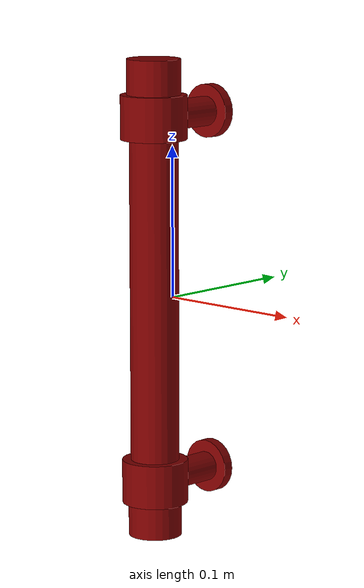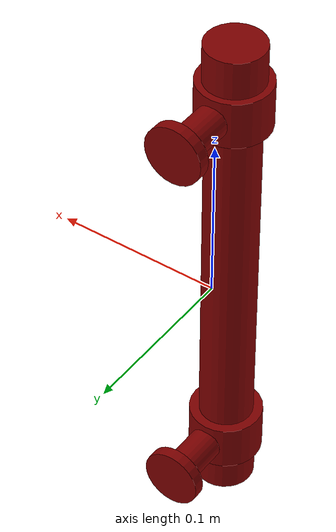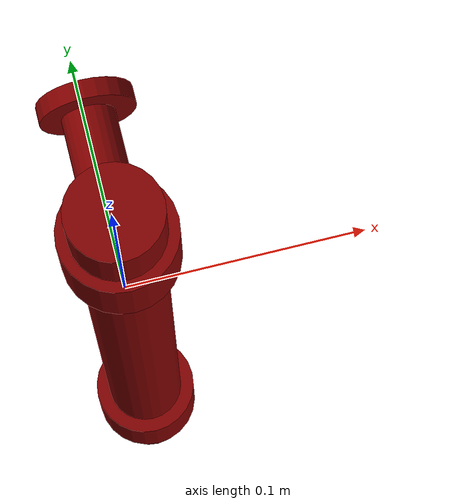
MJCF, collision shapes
<?xml version='1.0' encoding='UTF-8'?>
<mujoco model="model">
  <option timestep="0.002" gravity="0.0 0.0 -9.81"/>
  <compiler angle="radian"/>
  <asset>
    <mesh file="visuals/CabinetHandle026.obj" name="CabinetHandle026_vis"/>
    <texture file="visuals/T_BC001.png" name="tex" type="2d"/>
    <material name="mat" rgba="1 1 1 1.0" texture="tex" shininess="0.5" specular="0.3103448502657381"/>
  </asset>
  <default>
    <default class="visual">
      <geom conaffinity="0" contype="0" group="1" type="mesh"/>
    </default>
    <default class="collision">
      <geom group="0" rgba="0.5 0 0 0.5" density="1.0" solref="0.004 1" solimp="0.998 0.998 0.001"/>
    </default>
    <default class="spawn">
      <geom group="0" rgba="1 1 1 0.5" contype="0" conaffinity="0"/>
      <site group="0" rgba="1 1 1 0.5"/>
    </default>
    <default class="region">
      <geom group="1" conaffinity="0" contype="0" rgba="0 1 0 0" mass="0"/>
    </default>
  </default>
  <worldbody>
    <body>
      <body name="object">
        <geom mesh="CabinetHandle026_vis" type="mesh" solimp="0.998 0.998 0.001" solref="0.001 1" friction="0.95 0.3 0.1" class="visual" material="mat"/>
        <geom type="cylinder" pos="0.00000100 0.03511403 -0.12027799" size="0.017641788348555565 0.00350715103559196" quat="0.7071067094802856 0.70710688829422 0.0 0.0" class="collision"/>
        <geom type="cylinder" pos="0.00000100 0.01768535 -0.12027799" size="0.009809747338294983 0.014196811243891716" quat="0.7071067094802856 0.70710688829422 0.0 0.0" class="collision"/>
        <geom type="cylinder" pos="0.00000100 0.03511403 0.12025081" size="0.017642637714743614 0.00350715103559196" quat="0.7071067094802856 0.70710688829422 0.0 0.0" class="collision"/>
        <geom type="cylinder" pos="0.00000100 0.01768535 0.12025081" size="0.009809747338294983 0.014196811243891716" quat="0.7071067094802856 0.70710688829422 0.0 0.0" class="collision"/>
        <geom type="cylinder" pos="0.00000100 -0.01712882 0.00000000" size="0.01596938818693161 0.11260999739170074" quat="1.0 0.0 0.0 0.0" class="collision"/>
        <geom type="cylinder" pos="0.00000100 -0.01712882 0.12046640" size="0.021675603464245796 0.014435467310249805" quat="1.0 0.0 0.0 0.0" class="collision"/>
        <geom type="cylinder" pos="0.00000100 -0.01712882 -0.12058165" size="0.021675603464245796 0.014435467310249805" quat="1.0 0.0 0.0 0.0" class="collision"/>
        <geom type="cylinder" pos="0.00000100 -0.01712882 0.14356965" size="0.017545834183692932 0.01443546637892723" quat="1.0 0.0 0.0 0.0" class="collision"/>
        <geom type="cylinder" pos="0.00000100 -0.01712882 -0.14283524" size="0.017545834183692932 0.01443546637892723" quat="1.0 0.0 0.0 0.0" class="collision"/>
        <geom class="region" name="reg_main" type="box" pos="-3.5000000000659504e-08 -3.999999999976245e-08 2.2499999999259224e-07" size="0.022696905000000003 0.03980447 0.158560125"/>
      </body>
    </body>
  </worldbody>
  <actuator/>
</mujoco>
